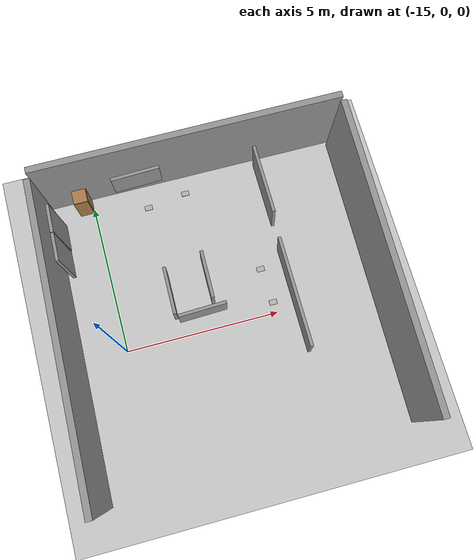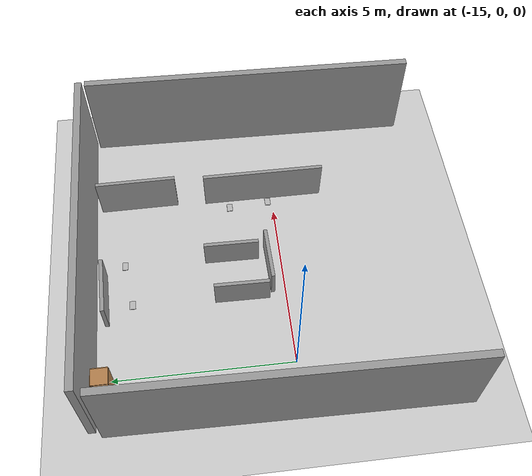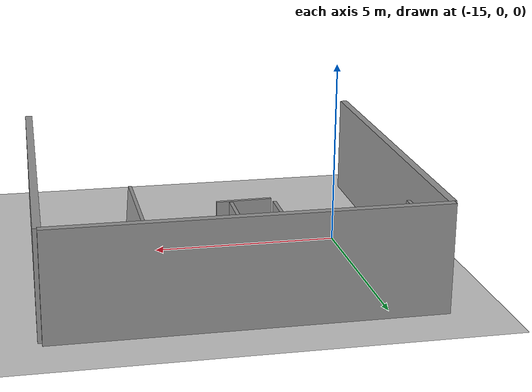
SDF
<sdf version="1.6">
 <world name="default">
  <model name="ground_plane">
   <static>1</static>
   <link name="link">
    <collision name="collision">
     <geometry><plane><normal>0 0 1</normal><size>100 100</size></plane></geometry>
     <surface><friction><ode><mu>100</mu><mu2>50</mu2></ode></friction></surface>
    </collision>
    <visual name="visual">
     <cast_shadows>0</cast_shadows>
     <geometry><plane><normal>0 0 1</normal><size>100 100</size></plane></geometry>
     <material>
      <script><uri>file://media/materials/scripts/gazebo.material</uri><name>Gazebo/Grey</name></script>
     </material>
    </visual>
   </link>
  </model>
  <model name="grey_wall_clone">
   <link name="link">
    <pose>1.40413 -0.11801 1.4 0 -0 0</pose>
    <inertial>
     <mass>1.14359</mass>
     <inertia><ixx>0.750957</ixx><ixy>0</ixy><ixz>0</ixz><iyy>9.7518</iyy><iyz>0</iyz><izz>9.00846</izz></inertia>
    </inertial>
    <visual name="visual">
     <cast_shadows>0</cast_shadows>
     <geometry><box><size>9.72051 0.2 2.8</size></box></geometry>
     <material>
      <script>
       <uri>model://grey_wall/materials/scripts</uri>
       <uri>model://grey_wall/materials/textures</uri>
       <name>vrc/grey_wall</name>
      </script>
      <shader type="vertex"><normal_map>__default__</normal_map></shader>
      <ambient>1 1 1 1</ambient>
      <diffuse>1 1 1 1</diffuse>
      <specular>0 0 0 1</specular>
      <emissive>0 0 0 1</emissive>
     </material>
    </visual>
    <collision name="collision">
     <geometry><box><size>9.72051 0.2 2.8</size></box></geometry>
     <surface>
      <friction>
       <ode><mu>1</mu><mu2>1</mu2><fdir1>0 0 0</fdir1><slip1>0</slip1><slip2>0</slip2></ode>
       <torsional>
        <coefficient>1</coefficient>
        <patch_radius>0</patch_radius>
        <surface_radius>0</surface_radius>
        <use_patch_radius>1</use_patch_radius>
        <ode><slip>0</slip></ode>
       </torsional>
      </friction>
      <bounce><restitution_coefficient>0</restitution_coefficient><threshold>1e+06</threshold></bounce>
      <contact>
       <collide_without_contact>0</collide_without_contact>
       <collide_without_contact_bitmask>1</collide_without_contact_bitmask>
       <collide_bitmask>1</collide_bitmask>
       <ode>
        <soft_cfm>0</soft_cfm>
        <soft_erp>0.2</soft_erp>
        <kp>1e+13</kp>
        <kd>1</kd>
        <max_vel>0.01</max_vel>
        <min_depth>0</min_depth>
       </ode>
       <bullet>
        <split_impulse>1</split_impulse>
        <split_impulse_penetration_threshold>-0.01</split_impulse_penetration_threshold>
        <soft_cfm>0</soft_cfm>
        <soft_erp>0.2</soft_erp>
        <kp>1e+13</kp>
        <kd>1</kd>
       </bullet>
      </contact>
     </surface>
    </collision>
   </link>
   <static>1</static>
   <pose>-12.907 5.58737 0.05743 0 -0 0</pose>
  </model>
  <model name="grey_wall_clone_clone">
   <link name="link">
    <pose>0.291975 -0.11801 1.4 0 -0 0</pose>
    <inertial>
     <mass>1.14525</mass>
     <inertia><ixx>0.752049</ixx><ixy>0</ixy><ixz>0</ixz><iyy>9.79222</iyy><iyz>0</iyz><izz>9.04781</izz></inertia>
    </inertial>
    <visual name="visual">
     <cast_shadows>0</cast_shadows>
     <geometry><box><size>9.73464 0.2 2.8</size></box></geometry>
     <material>
      <script>
       <uri>model://grey_wall/materials/scripts</uri>
       <uri>model://grey_wall/materials/textures</uri>
       <name>vrc/grey_wall</name>
      </script>
      <shader type="vertex"><normal_map>__default__</normal_map></shader>
      <ambient>1 1 1 1</ambient>
      <diffuse>1 1 1 1</diffuse>
      <specular>0 0 0 1</specular>
      <emissive>0 0 0 1</emissive>
     </material>
    </visual>
    <collision name="collision">
     <geometry><box><size>9.73464 0.2 2.8</size></box></geometry>
     <surface>
      <friction>
       <ode><mu>1</mu><mu2>1</mu2><fdir1>0 0 0</fdir1><slip1>0</slip1><slip2>0</slip2></ode>
       <torsional>
        <coefficient>1</coefficient>
        <patch_radius>0</patch_radius>
        <surface_radius>0</surface_radius>
        <use_patch_radius>1</use_patch_radius>
        <ode><slip>0</slip></ode>
       </torsional>
      </friction>
      <bounce><restitution_coefficient>0</restitution_coefficient><threshold>1e+06</threshold></bounce>
      <contact>
       <collide_without_contact>0</collide_without_contact>
       <collide_without_contact_bitmask>1</collide_without_contact_bitmask>
       <collide_bitmask>1</collide_bitmask>
       <ode>
        <soft_cfm>0</soft_cfm>
        <soft_erp>0.2</soft_erp>
        <kp>1e+13</kp>
        <kd>1</kd>
        <max_vel>0.01</max_vel>
        <min_depth>0</min_depth>
       </ode>
       <bullet>
        <split_impulse>1</split_impulse>
        <split_impulse_penetration_threshold>-0.01</split_impulse_penetration_threshold>
        <soft_cfm>0</soft_cfm>
        <soft_erp>0.2</soft_erp>
        <kp>1e+13</kp>
        <kd>1</kd>
       </bullet>
      </contact>
     </surface>
    </collision>
   </link>
   <static>1</static>
   <pose>-16.6059 0.064123 0 0 -0 1.55187</pose>
  </model>
  <model name="unit_box_clone_0_clone_clone_0_clone_clone">
   <link name="link">
    <inertial>
     <mass>0.724105</mass>
     <inertia>
      <ixx>0.0453015</ixx>
      <ixy>0</ixy>
      <ixz>0</ixz>
      <iyy>0.183143</iyy>
      <iyz>0</iyz>
      <izz>0.139048</izz>
     </inertia>
    </inertial>
    <pose>0.262043 -0.534144 0 0 -0 1.59038</pose>
    <visual name="visual">
     <geometry><box><size>1.5147 0.1 0.860665</size></box></geometry>
     <material>
      <script><name>Gazebo/Grey</name><uri>file://media/materials/scripts/gazebo.material</uri></script>
      <shader type="vertex"><normal_map>__default__</normal_map></shader>
      <ambient>0 0 0 1</ambient>
      <diffuse>0 0 0 1</diffuse>
      <specular>0.01 0.01 0.01 1</specular>
      <emissive>0 0 0 1</emissive>
     </material>
    </visual>
    <collision name="collision">
     <geometry><box><size>1.5147 0.1 0.860665</size></box></geometry>
     <surface>
      <friction>
       <ode><mu>1</mu><mu2>1</mu2><fdir1>0 0 0</fdir1><slip1>0</slip1><slip2>0</slip2></ode>
       <torsional>
        <coefficient>1</coefficient>
        <patch_radius>0</patch_radius>
        <surface_radius>0</surface_radius>
        <use_patch_radius>1</use_patch_radius>
        <ode><slip>0</slip></ode>
       </torsional>
      </friction>
      <bounce><restitution_coefficient>0</restitution_coefficient><threshold>1e+06</threshold></bounce>
      <contact>
       <collide_without_contact>0</collide_without_contact>
       <collide_without_contact_bitmask>1</collide_without_contact_bitmask>
       <collide_bitmask>1</collide_bitmask>
       <ode>
        <soft_cfm>0</soft_cfm>
        <soft_erp>0.2</soft_erp>
        <kp>1e+13</kp>
        <kd>1</kd>
        <max_vel>0.01</max_vel>
        <min_depth>0</min_depth>
       </ode>
       <bullet>
        <split_impulse>1</split_impulse>
        <split_impulse_penetration_threshold>-0.01</split_impulse_penetration_threshold>
        <soft_cfm>0</soft_cfm>
        <soft_erp>0.2</soft_erp>
        <kp>1e+13</kp>
        <kd>1</kd>
       </bullet>
      </contact>
     </surface>
    </collision>
   </link>
   <static>1</static>
   <pose>-13.4302 1.81234 0.970187 -3e-05 0.001515 -0.03305</pose>
  </model>
  <model name="unit_box_clone_0_clone_clone_0_clone_clone_0">
   <link name="link">
    <inertial>
     <mass>0.724105</mass>
     <inertia>
      <ixx>0.0453015</ixx>
      <ixy>0</ixy>
      <ixz>0</ixz>
      <iyy>0.183143</iyy>
      <iyz>0</iyz>
      <izz>0.139048</izz>
     </inertia>
    </inertial>
    <pose>0.262043 -0.534144 0 0 -0 1.59038</pose>
    <visual name="visual">
     <geometry><box><size>1.5147 0.1 0.860665</size></box></geometry>
     <material>
      <script><name>Gazebo/Grey</name><uri>file://media/materials/scripts/gazebo.material</uri></script>
      <shader type="vertex"><normal_map>__default__</normal_map></shader>
      <ambient>0 0 0 1</ambient>
      <diffuse>0 0 0 1</diffuse>
      <specular>0.01 0.01 0.01 1</specular>
      <emissive>0 0 0 1</emissive>
     </material>
    </visual>
    <collision name="collision">
     <geometry><box><size>1.5147 0.1 0.860665</size></box></geometry>
     <surface>
      <friction>
       <ode><mu>1</mu><mu2>1</mu2><fdir1>0 0 0</fdir1><slip1>0</slip1><slip2>0</slip2></ode>
       <torsional>
        <coefficient>1</coefficient>
        <patch_radius>0</patch_radius>
        <surface_radius>0</surface_radius>
        <use_patch_radius>1</use_patch_radius>
        <ode><slip>0</slip></ode>
       </torsional>
      </friction>
      <bounce><restitution_coefficient>0</restitution_coefficient><threshold>1e+06</threshold></bounce>
      <contact>
       <collide_without_contact>0</collide_without_contact>
       <collide_without_contact_bitmask>1</collide_without_contact_bitmask>
       <collide_bitmask>1</collide_bitmask>
       <ode>
        <soft_cfm>0</soft_cfm>
        <soft_erp>0.2</soft_erp>
        <kp>1e+13</kp>
        <kd>1</kd>
        <max_vel>0.01</max_vel>
        <min_depth>0</min_depth>
       </ode>
       <bullet>
        <split_impulse>1</split_impulse>
        <split_impulse_penetration_threshold>-0.01</split_impulse_penetration_threshold>
        <soft_cfm>0</soft_cfm>
        <soft_erp>0.2</soft_erp>
        <kp>1e+13</kp>
        <kd>1</kd>
       </bullet>
      </contact>
     </surface>
    </collision>
   </link>
   <static>1</static>
   <pose>-11.8227 0.703821 1.03594 -1e-06 3.4e-05 -1.56064</pose>
  </model>
  <model name="unit_box_clone_0_clone_clone_0_clone_clone_0_clone">
   <link name="link">
    <inertial>
     <mass>0.724105</mass>
     <inertia>
      <ixx>0.0453015</ixx>
      <ixy>0</ixy>
      <ixz>0</ixz>
      <iyy>0.183143</iyy>
      <iyz>0</iyz>
      <izz>0.139048</izz>
     </inertia>
    </inertial>
    <pose>0.262043 -0.534144 0 0 -0 1.59038</pose>
    <visual name="visual">
     <geometry><box><size>1.5147 0.1 0.860665</size></box></geometry>
     <material>
      <script><name>Gazebo/Grey</name><uri>file://media/materials/scripts/gazebo.material</uri></script>
      <shader type="vertex"><normal_map>__default__</normal_map></shader>
      <ambient>0 0 0 1</ambient>
      <diffuse>0 0 0 1</diffuse>
      <specular>0.01 0.01 0.01 1</specular>
      <emissive>0 0 0 1</emissive>
     </material>
    </visual>
    <collision name="collision">
     <geometry><box><size>1.5147 0.1 0.860665</size></box></geometry>
     <surface>
      <friction>
       <ode><mu>1</mu><mu2>1</mu2><fdir1>0 0 0</fdir1><slip1>0</slip1><slip2>0</slip2></ode>
       <torsional>
        <coefficient>1</coefficient>
        <patch_radius>0</patch_radius>
        <surface_radius>0</surface_radius>
        <use_patch_radius>1</use_patch_radius>
        <ode><slip>0</slip></ode>
       </torsional>
      </friction>
      <bounce><restitution_coefficient>0</restitution_coefficient><threshold>1e+06</threshold></bounce>
      <contact>
       <collide_without_contact>0</collide_without_contact>
       <collide_without_contact_bitmask>1</collide_without_contact_bitmask>
       <collide_bitmask>1</collide_bitmask>
       <ode>
        <soft_cfm>0</soft_cfm>
        <soft_erp>0.2</soft_erp>
        <kp>1e+13</kp>
        <kd>1</kd>
        <max_vel>0.01</max_vel>
        <min_depth>0</min_depth>
       </ode>
       <bullet>
        <split_impulse>1</split_impulse>
        <split_impulse_penetration_threshold>-0.01</split_impulse_penetration_threshold>
        <soft_cfm>0</soft_cfm>
        <soft_erp>0.2</soft_erp>
        <kp>1e+13</kp>
        <kd>1</kd>
       </bullet>
      </contact>
     </surface>
    </collision>
   </link>
   <static>1</static>
   <pose>-12.7715 5.13782 1.80351 -0.000124 0.006448 -1.56064</pose>
  </model>
  <model name="unit_box_clone_clone">
   <link name="link">
    <inertial>
     <mass>1</mass>
     <inertia>
      <ixx>0.166667</ixx>
      <ixy>0</ixy>
      <ixz>0</ixz>
      <iyy>0.166667</iyy>
      <iyz>0</iyz>
      <izz>0.166667</izz>
     </inertia>
    </inertial>
    <pose>0 0 0 0 -0 1.59038</pose>
    <visual name="visual">
     <geometry><box><size>0.9 0.1 2</size></box></geometry>
     <material>
      <script><name>Gazebo/Grey</name><uri>file://media/materials/scripts/gazebo.material</uri></script>
      <shader type="vertex"><normal_map>__default__</normal_map></shader>
      <ambient>0.3 0.3 0.3 1</ambient>
      <diffuse>0.7 0.7 0.7 1</diffuse>
      <specular>0.01 0.01 0.01 1</specular>
      <emissive>0 0 0 1</emissive>
     </material>
    </visual>
    <collision name="collision">
     <geometry><box><size>0.9 0.1 2</size></box></geometry>
     <surface>
      <friction>
       <ode><mu>1</mu><mu2>1</mu2><fdir1>0 0 0</fdir1><slip1>0</slip1><slip2>0</slip2></ode>
       <torsional>
        <coefficient>1</coefficient>
        <patch_radius>0</patch_radius>
        <surface_radius>0</surface_radius>
        <use_patch_radius>1</use_patch_radius>
        <ode><slip>0</slip></ode>
       </torsional>
      </friction>
      <bounce><restitution_coefficient>0</restitution_coefficient><threshold>1e+06</threshold></bounce>
      <contact>
       <collide_without_contact>0</collide_without_contact>
       <collide_without_contact_bitmask>1</collide_without_contact_bitmask>
       <collide_bitmask>1</collide_bitmask>
       <ode>
        <soft_cfm>0</soft_cfm>
        <soft_erp>0.2</soft_erp>
        <kp>1e+13</kp>
        <kd>1</kd>
        <max_vel>0.01</max_vel>
        <min_depth>0</min_depth>
       </ode>
       <bullet>
        <split_impulse>1</split_impulse>
        <split_impulse_penetration_threshold>-0.01</split_impulse_penetration_threshold>
        <soft_cfm>0</soft_cfm>
        <soft_erp>0.2</soft_erp>
        <kp>1e+13</kp>
        <kd>1</kd>
       </bullet>
      </contact>
     </surface>
    </collision>
   </link>
   <static>1</static>
   <pose>-16.1079 4.21079 1.01917 0.005165 -0.025451 -0.048475</pose>
  </model>
  <model name="unit_box_clone_0_clone_clone_clone_0_clone_clone_0">
   <link name="link">
    <inertial>
     <mass>1.76092</mass>
     <inertia><ixx>0.27833</ixx><ixy>0</ixy><ixz>0</ixz><iyy>1.05856</iyy><iyz>0</iyz><izz>0.783161</izz></inertia>
    </inertial>
    <pose>0.262043 -0.534144 -0 0 -0 1.59038</pose>
    <visual name="visual">
     <geometry><box><size>2.30802 0.1 1.37358</size></box></geometry>
     <material>
      <script><name>Gazebo/Grey</name><uri>file://media/materials/scripts/gazebo.material</uri></script>
      <shader type="vertex"><normal_map>__default__</normal_map></shader>
      <ambient>0.8 0.8 0.8 1</ambient>
      <diffuse>0 0 0 1</diffuse>
      <specular>0.01 0.01 0.01 1</specular>
      <emissive>0 0 0 1</emissive>
     </material>
    </visual>
    <collision name="collision">
     <geometry><box><size>2.30802 0.1 1.37358</size></box></geometry>
     <surface>
      <friction>
       <ode><mu>1</mu><mu2>1</mu2><fdir1>0 0 0</fdir1><slip1>0</slip1><slip2>0</slip2></ode>
       <torsional>
        <coefficient>1</coefficient>
        <patch_radius>0</patch_radius>
        <surface_radius>0</surface_radius>
        <use_patch_radius>1</use_patch_radius>
        <ode><slip>0</slip></ode>
       </torsional>
      </friction>
      <bounce><restitution_coefficient>0</restitution_coefficient><threshold>1e+06</threshold></bounce>
      <contact>
       <collide_without_contact>0</collide_without_contact>
       <collide_without_contact_bitmask>1</collide_without_contact_bitmask>
       <collide_bitmask>1</collide_bitmask>
       <ode>
        <soft_cfm>0</soft_cfm>
        <soft_erp>0.2</soft_erp>
        <kp>1e+13</kp>
        <kd>1</kd>
        <max_vel>0.01</max_vel>
        <min_depth>0</min_depth>
       </ode>
       <bullet>
        <split_impulse>1</split_impulse>
        <split_impulse_penetration_threshold>-0.01</split_impulse_penetration_threshold>
        <soft_cfm>0</soft_cfm>
        <soft_erp>0.2</soft_erp>
        <kp>1e+13</kp>
        <kd>1</kd>
       </bullet>
      </contact>
     </surface>
    </collision>
   </link>
   <static>1</static>
   <pose>-9.63931 4.58608 0.725129 0.000802 -0.04702 -0.014366</pose>
  </model>
  <model name="unit_box_clone_0_clone_clone_clone_0_clone">
   <link name="link">
    <inertial>
     <mass>2.70376</mass>
     <inertia><ixx>0.427356</ixx><ixy>0</ixy><ixz>0</ixz><iyy>3.25466</iyy><iyz>0</iyz><izz>2.83181</izz></inertia>
    </inertial>
    <pose>0.201519 0.084446 -0.000374 0 -0 1.59038</pose>
    <visual name="visual">
     <geometry><box><size>3.54377 0.1 1.37358</size></box></geometry>
     <material>
      <script><name>Gazebo/Grey</name><uri>file://media/materials/scripts/gazebo.material</uri></script>
      <shader type="vertex"><normal_map>__default__</normal_map></shader>
      <ambient>0.8 0.8 0.8 1</ambient>
      <diffuse>0 0 0 1</diffuse>
      <specular>0.01 0.01 0.01 1</specular>
      <emissive>0 0 0 1</emissive>
     </material>
    </visual>
    <collision name="collision">
     <geometry><box><size>3.54377 0.1 1.37358</size></box></geometry>
     <surface>
      <friction>
       <ode><mu>1</mu><mu2>1</mu2><fdir1>0 0 0</fdir1><slip1>0</slip1><slip2>0</slip2></ode>
       <torsional>
        <coefficient>1</coefficient>
        <patch_radius>0</patch_radius>
        <surface_radius>0</surface_radius>
        <use_patch_radius>1</use_patch_radius>
        <ode><slip>0</slip></ode>
       </torsional>
      </friction>
      <bounce><restitution_coefficient>0</restitution_coefficient><threshold>1e+06</threshold></bounce>
      <contact>
       <collide_without_contact>0</collide_without_contact>
       <collide_without_contact_bitmask>1</collide_without_contact_bitmask>
       <collide_bitmask>1</collide_bitmask>
       <ode>
        <soft_cfm>0</soft_cfm>
        <soft_erp>0.2</soft_erp>
        <kp>1e+13</kp>
        <kd>1</kd>
        <max_vel>0.01</max_vel>
        <min_depth>0</min_depth>
       </ode>
       <bullet>
        <split_impulse>1</split_impulse>
        <split_impulse_penetration_threshold>-0.01</split_impulse_penetration_threshold>
        <soft_cfm>0</soft_cfm>
        <soft_erp>0.2</soft_erp>
        <kp>1e+13</kp>
        <kd>1</kd>
       </bullet>
      </contact>
     </surface>
    </collision>
   </link>
   <static>1</static>
   <pose>-9.63434 0.195982 0.701422 0.000795 -0.071868 -0.019577</pose>
  </model>
  <model name="unit_box_clone_clone_clone">
   <link name="link">
    <inertial>
     <mass>1</mass>
     <inertia>
      <ixx>0.166667</ixx>
      <ixy>0</ixy>
      <ixz>0</ixz>
      <iyy>0.166667</iyy>
      <iyz>0</iyz>
      <izz>0.166667</izz>
     </inertia>
    </inertial>
    <pose>0 0 0 0 -0 1.59038</pose>
    <visual name="visual">
     <geometry><box><size>0.9 0.1 2</size></box></geometry>
     <material>
      <script><name>Gazebo/Grey</name><uri>file://media/materials/scripts/gazebo.material</uri></script>
      <shader type="vertex"><normal_map>__default__</normal_map></shader>
      <ambient>0.3 0.3 0.3 1</ambient>
      <diffuse>0.7 0.7 0.7 1</diffuse>
      <specular>0.01 0.01 0.01 1</specular>
      <emissive>0 0 0 1</emissive>
     </material>
    </visual>
    <collision name="collision">
     <geometry><box><size>0.9 0.1 2</size></box></geometry>
     <surface>
      <friction>
       <ode><mu>1</mu><mu2>1</mu2><fdir1>0 0 0</fdir1><slip1>0</slip1><slip2>0</slip2></ode>
       <torsional>
        <coefficient>1</coefficient>
        <patch_radius>0</patch_radius>
        <surface_radius>0</surface_radius>
        <use_patch_radius>1</use_patch_radius>
        <ode><slip>0</slip></ode>
       </torsional>
      </friction>
      <bounce><restitution_coefficient>0</restitution_coefficient><threshold>1e+06</threshold></bounce>
      <contact>
       <collide_without_contact>0</collide_without_contact>
       <collide_without_contact_bitmask>1</collide_without_contact_bitmask>
       <collide_bitmask>1</collide_bitmask>
       <ode>
        <soft_cfm>0</soft_cfm>
        <soft_erp>0.2</soft_erp>
        <kp>1e+13</kp>
        <kd>1</kd>
        <max_vel>0.01</max_vel>
        <min_depth>0</min_depth>
       </ode>
       <bullet>
        <split_impulse>1</split_impulse>
        <split_impulse_penetration_threshold>-0.01</split_impulse_penetration_threshold>
        <soft_cfm>0</soft_cfm>
        <soft_erp>0.2</soft_erp>
        <kp>1e+13</kp>
        <kd>1</kd>
       </bullet>
      </contact>
     </surface>
    </collision>
   </link>
   <static>1</static>
   <pose>-16.1372 3.28285 1.02832 0.004948 -0.016135 -0.044177</pose>
  </model>
  <model name="grey_wall_clone_clone_clone">
   <link name="link">
    <pose>0.291975 -0.11801 1.4 0 -0 0</pose>
    <inertial>
     <mass>1.14525</mass>
     <inertia><ixx>0.752049</ixx><ixy>0</ixy><ixz>0</ixz><iyy>9.79222</iyy><iyz>0</iyz><izz>9.04781</izz></inertia>
    </inertial>
    <visual name="visual">
     <cast_shadows>0</cast_shadows>
     <geometry><box><size>9.73464 0.2 2.8</size></box></geometry>
     <material>
      <script>
       <uri>model://grey_wall/materials/scripts</uri>
       <uri>model://grey_wall/materials/textures</uri>
       <name>vrc/grey_wall</name>
      </script>
      <shader type="vertex"><normal_map>__default__</normal_map></shader>
      <ambient>1 1 1 1</ambient>
      <diffuse>1 1 1 1</diffuse>
      <specular>0 0 0 1</specular>
      <emissive>0 0 0 1</emissive>
     </material>
    </visual>
    <collision name="collision">
     <geometry><box><size>9.73464 0.2 2.8</size></box></geometry>
     <surface>
      <friction>
       <ode><mu>1</mu><mu2>1</mu2><fdir1>0 0 0</fdir1><slip1>0</slip1><slip2>0</slip2></ode>
       <torsional>
        <coefficient>1</coefficient>
        <patch_radius>0</patch_radius>
        <surface_radius>0</surface_radius>
        <use_patch_radius>1</use_patch_radius>
        <ode><slip>0</slip></ode>
       </torsional>
      </friction>
      <bounce><restitution_coefficient>0</restitution_coefficient><threshold>1e+06</threshold></bounce>
      <contact>
       <collide_without_contact>0</collide_without_contact>
       <collide_without_contact_bitmask>1</collide_without_contact_bitmask>
       <collide_bitmask>1</collide_bitmask>
       <ode>
        <soft_cfm>0</soft_cfm>
        <soft_erp>0.2</soft_erp>
        <kp>1e+13</kp>
        <kd>1</kd>
        <max_vel>0.01</max_vel>
        <min_depth>0</min_depth>
       </ode>
       <bullet>
        <split_impulse>1</split_impulse>
        <split_impulse_penetration_threshold>-0.01</split_impulse_penetration_threshold>
        <soft_cfm>0</soft_cfm>
        <soft_erp>0.2</soft_erp>
        <kp>1e+13</kp>
        <kd>1</kd>
       </bullet>
      </contact>
     </surface>
    </collision>
   </link>
   <static>1</static>
   <pose>-6.85743 0.137685 0 0 -0 1.55187</pose>
  </model>
  <model name="unit_box_clone_0_clone_clone_0_clone_clone_clone">
   <link name="link">
    <inertial>
     <mass>0.724105</mass>
     <inertia>
      <ixx>0.0453015</ixx>
      <ixy>0</ixy>
      <ixz>0</ixz>
      <iyy>0.183143</iyy>
      <iyz>0</iyz>
      <izz>0.139048</izz>
     </inertia>
    </inertial>
    <pose>0.262043 -0.534144 0 0 -0 1.59038</pose>
    <visual name="visual">
     <geometry><box><size>1.5147 0.1 0.860665</size></box></geometry>
     <material>
      <script><name>Gazebo/Grey</name><uri>file://media/materials/scripts/gazebo.material</uri></script>
      <shader type="vertex"><normal_map>__default__</normal_map></shader>
      <ambient>0 0 0 1</ambient>
      <diffuse>0 0 0 1</diffuse>
      <specular>0.01 0.01 0.01 1</specular>
      <emissive>0 0 0 1</emissive>
     </material>
    </visual>
    <collision name="collision">
     <geometry><box><size>1.5147 0.1 0.860665</size></box></geometry>
     <surface>
      <friction>
       <ode><mu>1</mu><mu2>1</mu2><fdir1>0 0 0</fdir1><slip1>0</slip1><slip2>0</slip2></ode>
       <torsional>
        <coefficient>1</coefficient>
        <patch_radius>0</patch_radius>
        <surface_radius>0</surface_radius>
        <use_patch_radius>1</use_patch_radius>
        <ode><slip>0</slip></ode>
       </torsional>
      </friction>
      <bounce><restitution_coefficient>0</restitution_coefficient><threshold>1e+06</threshold></bounce>
      <contact>
       <collide_without_contact>0</collide_without_contact>
       <collide_without_contact_bitmask>1</collide_without_contact_bitmask>
       <collide_bitmask>1</collide_bitmask>
       <ode>
        <soft_cfm>0</soft_cfm>
        <soft_erp>0.2</soft_erp>
        <kp>1e+13</kp>
        <kd>1</kd>
        <max_vel>0.01</max_vel>
        <min_depth>0</min_depth>
       </ode>
       <bullet>
        <split_impulse>1</split_impulse>
        <split_impulse_penetration_threshold>-0.01</split_impulse_penetration_threshold>
        <soft_cfm>0</soft_cfm>
        <soft_erp>0.2</soft_erp>
        <kp>1e+13</kp>
        <kd>1</kd>
       </bullet>
      </contact>
     </surface>
    </collision>
   </link>
   <static>1</static>
   <pose>-12.193 1.98789 1.08225 -3e-05 0.001515 -0.03305</pose>
  </model>
  <model name="book_3">
   <link name="cover">
    <pose>0 -0.000108 0.01 0 -0 0</pose>
    <visual name="visual">
     <geometry><box><size>0.245 0.16 0.02</size></box></geometry>
     <material>
      <script>
       <uri>model://book_3/materials/scripts</uri>
       <uri>model://book_3/materials/textures</uri>
       <name>book_3</name>
      </script>
     </material>
    </visual>
    <collision name="collision"><geometry><box><size>0.245 0.16 0.02</size></box></geometry></collision>
   </link>
   <link name="page">
    <pose>0 0.000608 0.01 0 -0 0</pose>
    <visual name="visual">
     <geometry><box><size>0.24502 0.15862 0.018</size></box></geometry>
     <material>
      <lighting>1</lighting>
      <ambient>1 1 1 1</ambient>
      <diffuse>1 1 1 1</diffuse>
      <specular>0.01 0.01 0.01 1</specular>
      <emissive>0 0 0 1</emissive>
      <shader type="vertex"><normal_map>__default__</normal_map></shader>
     </material>
    </visual>
    <collision name="collision"><geometry><box><size>0.245 0.16 0.018</size></box></geometry></collision>
   </link>
   <static>1</static>
   <pose>-11.9321 4.44841 0.798066 0 -0 0</pose>
  </model>
  <model name="book_3_clone">
   <link name="cover">
    <pose>0 -0.000108 0.01 0 -0 0</pose>
    <visual name="visual">
     <geometry><box><size>0.245 0.16 0.02</size></box></geometry>
     <material>
      <script>
       <uri>model://book_3/materials/scripts</uri>
       <uri>model://book_3/materials/textures</uri>
       <name>book_3</name>
      </script>
     </material>
    </visual>
    <collision name="collision"><geometry><box><size>0.245 0.16 0.02</size></box></geometry></collision>
   </link>
   <link name="page">
    <pose>0 0.000608 0.01 0 -0 0</pose>
    <visual name="visual">
     <geometry><box><size>0.24502 0.15862 0.018</size></box></geometry>
     <material>
      <lighting>1</lighting>
      <ambient>1 1 1 1</ambient>
      <diffuse>1 1 1 1</diffuse>
      <specular>0.01 0.01 0.01 1</specular>
      <emissive>0 0 0 1</emissive>
      <shader type="vertex"><normal_map>__default__</normal_map></shader>
     </material>
    </visual>
    <collision name="collision"><geometry><box><size>0.245 0.16 0.018</size></box></geometry></collision>
   </link>
   <static>1</static>
   <pose>-13.1971 4.26655 0.798066 0 -0 0</pose>
  </model>
  <model name="cabinet">
   <static>1</static>
   <link name="cabinet_bottom_plate">
    <inertial>
     <pose>0 0 -1 0 -0 0</pose>
     <inertia><ixx>2.05</ixx><ixy>0</ixy><ixz>0</ixz><iyy>2.05</iyy><iyz>0</iyz><izz>2.05</izz></inertia>
     <mass>25</mass>
    </inertial>
    <collision name="cabinet_bottom_plate_geom">
     <pose>0 0 0.01 0 -0 0</pose>
     <geometry><box><size>0.45 0.45 0.02</size></box></geometry>
    </collision>
    <visual name="cabinet_bottom_plate_geom_visual">
     <pose>0 0 0.01 0 -0 0</pose>
     <geometry><box><size>0.45 0.45 0.02</size></box></geometry>
     <material>
      <script><uri>file://media/materials/scripts/gazebo.material</uri><name>Gazebo/Wood</name></script>
     </material>
    </visual>
    <collision name="cabinet_bottom_plate_geom_cabinet_back_plate">
     <pose>0.235 0 0.51 0 -0 0</pose>
     <geometry><box><size>0.02 0.45 1.02</size></box></geometry>
    </collision>
    <visual name="cabinet_bottom_plate_geom_cabinet_back_plate_visual">
     <pose>0.235 0 0.51 0 -0 0</pose>
     <geometry><box><size>0.02 0.45 1.02</size></box></geometry>
     <material>
      <script><uri>file://media/materials/scripts/gazebo.material</uri><name>Gazebo/Wood</name></script>
     </material>
    </visual>
    <collision name="cabinet_bottom_plate_geom_cabinet_left_plate">
     <pose>0 0.235 0.51 0 -0 0</pose>
     <geometry><box><size>0.45 0.02 1.02</size></box></geometry>
    </collision>
    <visual name="cabinet_bottom_plate_geom_cabinet_left_plate_visual">
     <pose>0 0.235 0.51 0 -0 0</pose>
     <geometry><box><size>0.45 0.02 1.02</size></box></geometry>
     <material>
      <script><uri>file://media/materials/scripts/gazebo.material</uri><name>Gazebo/Wood</name></script>
     </material>
    </visual>
    <collision name="cabinet_bottom_plate_geom_cabinet_middle_plate">
     <pose>0 0 0.51 0 -0 0</pose>
     <geometry><box><size>0.45 0.45 0.02</size></box></geometry>
    </collision>
    <visual name="cabinet_bottom_plate_geom_cabinet_middle_plate_visual">
     <pose>0 0 0.51 0 -0 0</pose>
     <geometry><box><size>0.45 0.45 0.02</size></box></geometry>
     <material>
      <script><uri>file://media/materials/scripts/gazebo.material</uri><name>Gazebo/Wood</name></script>
     </material>
    </visual>
    <collision name="cabinet_bottom_plate_geom_cabinet_right_plate">
     <pose>0 -0.235 0.51 0 -0 0</pose>
     <geometry><box><size>0.45 0.02 1.02</size></box></geometry>
    </collision>
    <visual name="cabinet_bottom_plate_geom_cabinet_right_plate_visual">
     <pose>0 -0.235 0.51 0 -0 0</pose>
     <geometry><box><size>0.45 0.02 1.02</size></box></geometry>
     <material>
      <script><uri>file://media/materials/scripts/gazebo.material</uri><name>Gazebo/Wood</name></script>
     </material>
    </visual>
    <collision name="cabinet_bottom_plate_geom_cabinet_top_plate">
     <pose>0 0 1.01 0 -0 0</pose>
     <geometry><box><size>0.45 0.45 0.02</size></box></geometry>
    </collision>
    <visual name="cabinet_bottom_plate_geom_cabinet_top_plate_visual">
     <pose>0 0 1.01 0 -0 0</pose>
     <geometry><box><size>0.45 0.45 0.02</size></box></geometry>
     <material>
      <script><uri>file://media/materials/scripts/gazebo.material</uri><name>Gazebo/Wood</name></script>
     </material>
    </visual>
   </link>
   <pose>-15.2618 5.13937 0 0 -0 0</pose>
  </model>
  <model name="book_3_clone_0">
   <link name="cover">
    <pose>0 -0.000108 0.01 0 -0 0</pose>
    <visual name="visual">
     <geometry><box><size>0.245 0.16 0.02</size></box></geometry>
     <material>
      <script>
       <uri>model://book_3/materials/scripts</uri>
       <uri>model://book_3/materials/textures</uri>
       <name>book_3</name>
      </script>
     </material>
    </visual>
    <collision name="collision"><geometry><box><size>0.245 0.16 0.02</size></box></geometry></collision>
   </link>
   <link name="page">
    <pose>0 0.000608 0.01 0 -0 0</pose>
    <visual name="visual">
     <geometry><box><size>0.24502 0.15862 0.018</size></box></geometry>
     <material>
      <lighting>1</lighting>
      <ambient>1 1 1 1</ambient>
      <diffuse>1 1 1 1</diffuse>
      <specular>0.01 0.01 0.01 1</specular>
      <emissive>0 0 0 1</emissive>
      <shader type="vertex"><normal_map>__default__</normal_map></shader>
     </material>
    </visual>
    <collision name="collision"><geometry><box><size>0.245 0.16 0.018</size></box></geometry></collision>
   </link>
   <static>1</static>
   <pose>-10.1546 0.214113 0.798066 0 -0 0</pose>
  </model>
  <model name="book_3_clone_1">
   <link name="cover">
    <pose>0 -0.000108 0.01 0 -0 0</pose>
    <visual name="visual">
     <geometry><box><size>0.245 0.16 0.02</size></box></geometry>
     <material>
      <script>
       <uri>model://book_3/materials/scripts</uri>
       <uri>model://book_3/materials/textures</uri>
       <name>book_3</name>
      </script>
     </material>
    </visual>
    <collision name="collision"><geometry><box><size>0.245 0.16 0.02</size></box></geometry></collision>
   </link>
   <link name="page">
    <pose>0 0.000608 0.01 0 -0 0</pose>
    <visual name="visual">
     <geometry><box><size>0.24502 0.15862 0.018</size></box></geometry>
     <material>
      <lighting>1</lighting>
      <ambient>1 1 1 1</ambient>
      <diffuse>1 1 1 1</diffuse>
      <specular>0.01 0.01 0.01 1</specular>
      <emissive>0 0 0 1</emissive>
      <shader type="vertex"><normal_map>__default__</normal_map></shader>
     </material>
    </visual>
    <collision name="collision"><geometry><box><size>0.245 0.16 0.018</size></box></geometry></collision>
   </link>
   <static>1</static>
   <pose>-10.2471 1.34936 0.798066 0 -0 0</pose>
  </model>
 </world>
</sdf>
